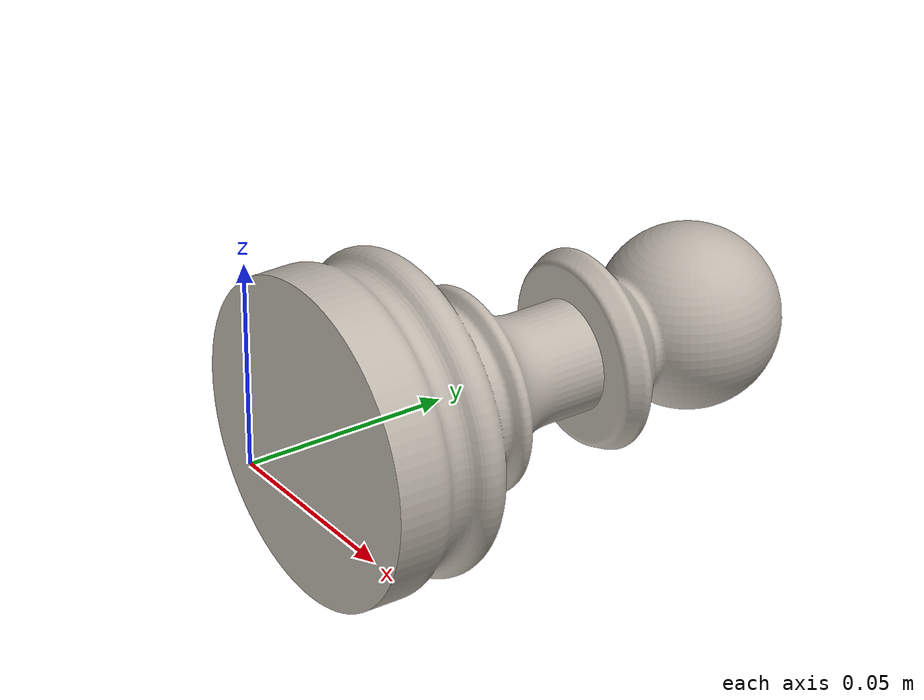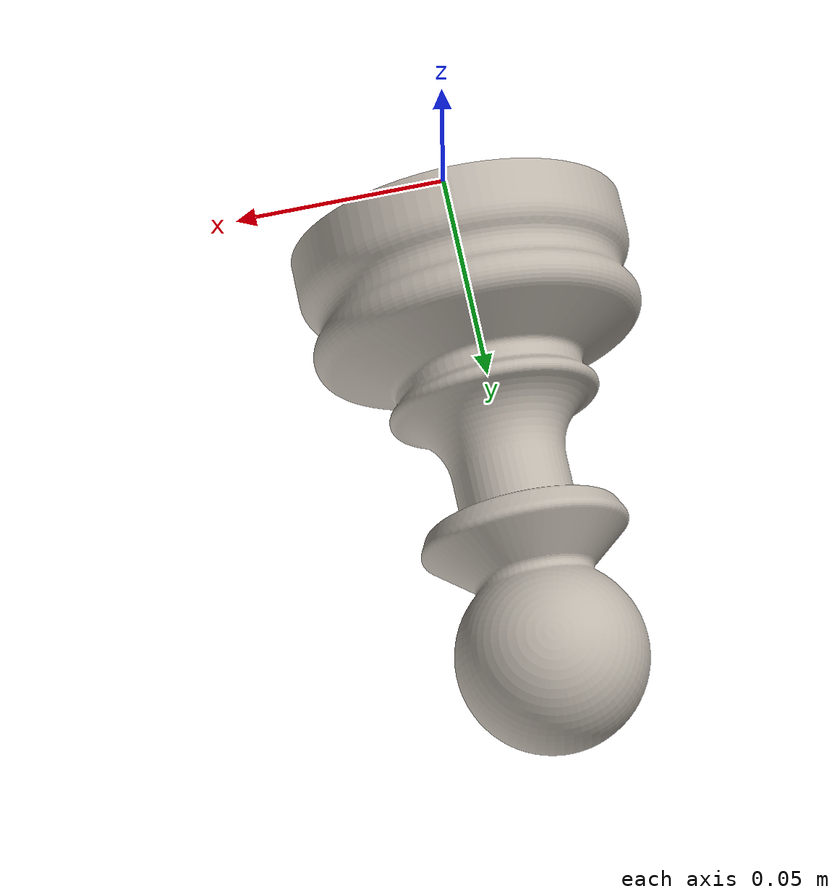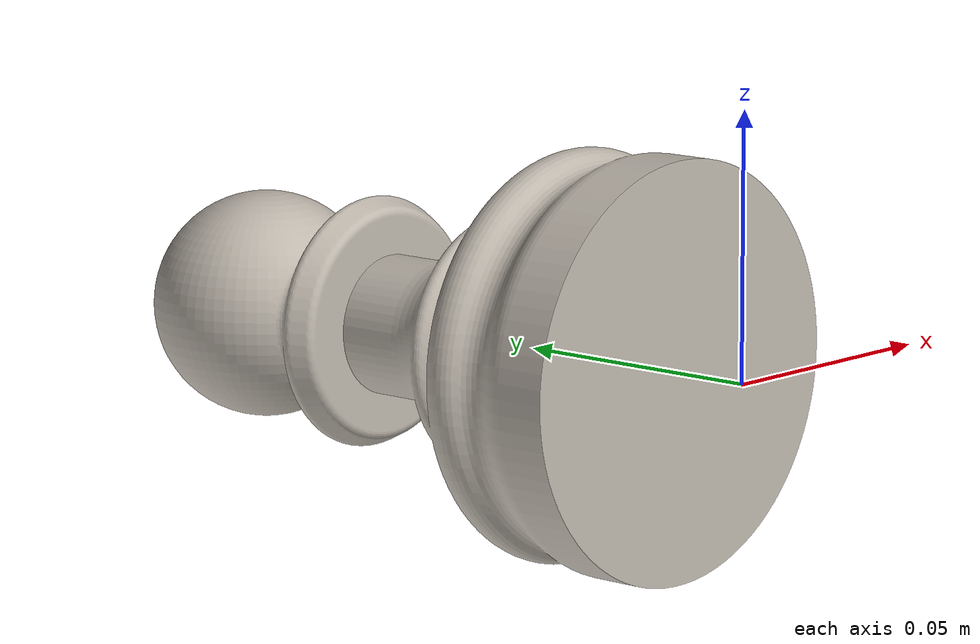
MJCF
<mujoco model="pawn">
  <asset>
    <mesh file="meshes/pawn.stl" name="pawn_mesh" scale="0.001 0.001 0.001"/>
    <texture file="../textures/chess_texture.png" type="2d" name="tex-pawn" />
    <material name="mat-pawn" reflectance="0.2" texrepeat="1 1" texture="tex-pawn" texuniform="true"/>
  </asset>
  <worldbody>
    <body>
      <body name="object">
        <geom pos="0 0 0" mesh="pawn_mesh" type="mesh" solimp="0.998 0.998 0.001" solref="0.001 1" density="5000" friction="0.5 0.3 0.1" material="mat-pawn" group="0" condim="4"/>
      </body>
      <site rgba="0 0 0 0" size="0.005" pos="0 0 0" name="pawn_site"/>
    </body>
  </worldbody>
</mujoco>
